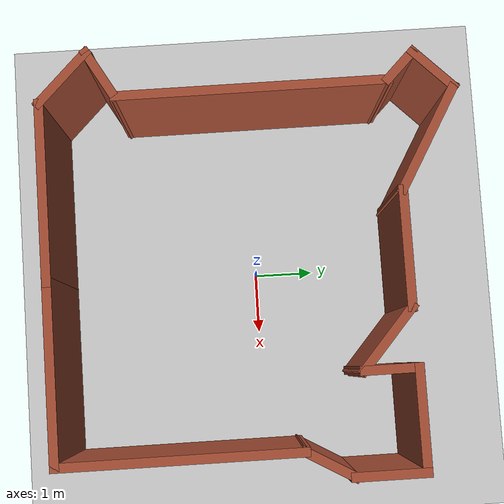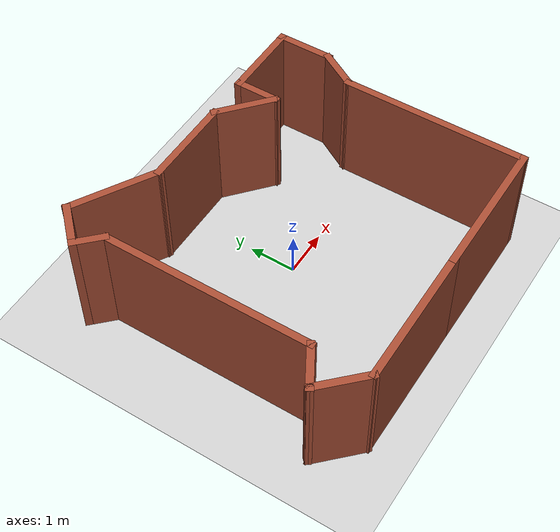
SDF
<sdf version="1.7">
 <world name="default">
  <light name="sun" type="directional">
   <pose>0 0 10 0 -0 0</pose>
   <diffuse>0.8 0.8 0.8 1</diffuse>
   <specular>0.2 0.2 0.2 1</specular>
   <attenuation>
    <range>1000</range>
    <constant>0.9</constant>
    <linear>0.01</linear>
    <quadratic>0.001</quadratic>
   </attenuation>
   <direction>-0.5 0.1 -0.9</direction>
   <spot><inner_angle>0</inner_angle><outer_angle>0</outer_angle><falloff>0</falloff></spot>
  </light>
  <model name="ground_plane">
   <static>1</static>
   <link name="link">
    <collision name="collision">
     <geometry><plane><normal>0 0 1</normal><size>100 100</size></plane></geometry>
     <surface><friction><ode><mu>100</mu><mu2>50</mu2></ode></friction></surface>
    </collision>
    <visual name="visual">
     <cast_shadows>0</cast_shadows>
     <geometry><plane><normal>0 0 1</normal><size>100 100</size></plane></geometry>
     <material>
      <script><uri>file://media/materials/scripts/gazebo.material</uri><name>Gazebo/Grey</name></script>
     </material>
    </visual>
   </link>
  </model>
  <gravity>0 0 -9.8</gravity>
  <magnetic_field>6e-06 2.3e-05 -4.2e-05</magnetic_field>
  <atmosphere type="adiabatic"/>
  <physics type="ode">
   <max_step_size>0.001</max_step_size>
   <real_time_factor>1</real_time_factor>
   <real_time_update_rate>1000</real_time_update_rate>
  </physics>
  <scene><ambient>0.4 0.4 0.4 1</ambient><background>0.7 0.7 0.7 1</background><shadows>1</shadows></scene>
  <spherical_coordinates>
   <surface_model>EARTH_WGS84</surface_model>
   <latitude_deg>0</latitude_deg>
   <longitude_deg>0</longitude_deg>
   <elevation>0</elevation>
   <heading_deg>0</heading_deg>
  </spherical_coordinates>
  <model name="small_room">
   <pose>-0.064408 -0.002962 0 0 -0 0</pose>
   <link name="Wall_10">
    <collision name="Wall_10_Collision">
     <geometry><box><size>3 0.15 2.5</size></box></geometry>
     <pose>0 0 1.25 0 -0 0</pose>
    </collision>
    <visual name="Wall_10_Visual">
     <pose>0 0 1.25 0 -0 0</pose>
     <geometry><box><size>3 0.15 2.5</size></box></geometry>
     <material>
      <script><uri>file://media/materials/scripts/gazebo.material</uri><name>Gazebo/Bricks</name></script>
      <ambient>1 1 1 1</ambient>
     </material>
     <meta><layer>0</layer></meta>
    </visual>
    <pose>-1.24678 -3.28906 0 0 -0 3.14159</pose>
   </link>
   <link name="Wall_11">
    <collision name="Wall_11_Collision">
     <geometry><box><size>1.25 0.15 2.5</size></box></geometry>
     <pose>0 0 1.25 0 -0 0</pose>
    </collision>
    <visual name="Wall_11_Visual">
     <pose>0 0 1.25 0 -0 0</pose>
     <geometry><box><size>1.25 0.15 2.5</size></box></geometry>
     <material>
      <script><uri>file://media/materials/scripts/gazebo.material</uri><name>Gazebo/Bricks</name></script>
      <ambient>1 1 1 1</ambient>
     </material>
     <meta><layer>0</layer></meta>
    </visual>
    <pose>-3.06069 -2.90015 0 0 -0 2.35619</pose>
   </link>
   <link name="Wall_12">
    <collision name="Wall_12_Collision">
     <geometry><box><size>1 0.15 2.5</size></box></geometry>
     <pose>0 0 1.25 0 -0 0</pose>
    </collision>
    <visual name="Wall_12_Visual">
     <pose>0 0 1.25 0 -0 0</pose>
     <geometry><box><size>1 0.15 2.5</size></box></geometry>
     <material>
      <script><uri>file://media/materials/scripts/gazebo.material</uri><name>Gazebo/Bricks</name></script>
      <ambient>1 1 1 1</ambient>
     </material>
     <meta><layer>0</layer></meta>
    </visual>
    <pose>-3.08154 -2.29874 0 0 -0 0.523599</pose>
   </link>
   <link name="Wall_13">
    <collision name="Wall_13_Collision">
     <geometry><box><size>4.5 0.15 2.5</size></box></geometry>
     <pose>0 0 1.25 0 -0 0</pose>
    </collision>
    <visual name="Wall_13_Visual">
     <pose>0 0 1.25 0 -0 0</pose>
     <geometry><box><size>4.5 0.15 2.5</size></box></geometry>
     <material>
      <script><uri>file://media/materials/scripts/gazebo.material</uri><name>Gazebo/Bricks</name></script>
      <ambient>1 1 1 1</ambient>
     </material>
     <meta><layer>0</layer></meta>
    </visual>
    <pose>-2.71348 0.088756 0 0 -0 1.5708</pose>
   </link>
   <link name="Wall_14">
    <collision name="Wall_14_Collision">
     <geometry><box><size>0.75 0.15 2.5</size></box></geometry>
     <pose>0 0 1.25 0 -0 0</pose>
    </collision>
    <visual name="Wall_14_Visual">
     <pose>0 0 1.25 0 -0 0</pose>
     <geometry><box><size>0.75 0.15 2.5</size></box></geometry>
     <material>
      <script><uri>file://media/materials/scripts/gazebo.material</uri><name>Gazebo/Bricks</name></script>
      <ambient>1 1 1 1</ambient>
     </material>
     <meta><layer>0</layer></meta>
    </visual>
    <pose>-2.92561 2.47589 0 0 -0 2.35619</pose>
   </link>
   <link name="Wall_15">
    <collision name="Wall_15_Collision">
     <geometry><box><size>1 0.15 2.5</size></box></geometry>
     <pose>0 0 1.25 0 -0 0</pose>
    </collision>
    <visual name="Wall_15_Visual">
     <pose>0 0 1.25 0 -0 0</pose>
     <geometry><box><size>1 0.15 2.5</size></box></geometry>
     <material>
      <script><uri>file://media/materials/scripts/gazebo.material</uri><name>Gazebo/Bricks</name></script>
      <ambient>1 1 1 1</ambient>
     </material>
     <meta><layer>0</layer></meta>
    </visual>
    <pose>-2.83722 2.98854 0 0 -0 0.785398</pose>
   </link>
   <link name="Wall_16">
    <collision name="Wall_16_Collision">
     <geometry><box><size>2 0.15 2.5</size></box></geometry>
     <pose>0 0 1.25 0 -0 0</pose>
    </collision>
    <visual name="Wall_16_Visual">
     <pose>0 0 1.25 0 -0 0</pose>
     <geometry><box><size>2 0.15 2.5</size></box></geometry>
     <material>
      <script><uri>file://media/materials/scripts/gazebo.material</uri><name>Gazebo/Bricks</name></script>
      <ambient>1 1 1 1</ambient>
     </material>
     <meta><layer>0</layer></meta>
    </visual>
    <pose>-1.73563 2.82656 0 0 -0 -0.523599</pose>
   </link>
   <link name="Wall_17">
    <collision name="Wall_17_Collision">
     <geometry><box><size>2 0.15 2.5</size></box></geometry>
     <pose>0 0 1.25 0 -0 0</pose>
    </collision>
    <visual name="Wall_17_Visual">
     <pose>0 0 1.25 0 -0 0</pose>
     <geometry><box><size>2 0.15 2.5</size></box></geometry>
     <material>
      <script><uri>file://media/materials/scripts/gazebo.material</uri><name>Gazebo/Bricks</name></script>
      <ambient>1 1 1 1</ambient>
     </material>
     <meta><layer>0</layer></meta>
    </visual>
    <pose>-0.009556 2.36406 0 0 -0 0</pose>
   </link>
   <link name="Wall_18">
    <collision name="Wall_18_Collision">
     <geometry><box><size>1.39375 0.15 2.5</size></box></geometry>
     <pose>0 0 1.25 0 -0 0</pose>
    </collision>
    <visual name="Wall_18_Visual">
     <pose>0 0 1.25 0 -0 0</pose>
     <geometry><box><size>1.39375 0.15 2.5</size></box></geometry>
     <material>
      <script><uri>file://media/materials/scripts/gazebo.material</uri><name>Gazebo/Bricks</name></script>
      <ambient>1 1 1 1</ambient>
     </material>
     <meta><layer>0</layer></meta>
    </visual>
    <pose>1.38433 1.95556 0 0 -0 -0.716682</pose>
   </link>
   <link name="Wall_3">
    <collision name="Wall_3_Collision">
     <geometry><box><size>3 0.15 2.5</size></box></geometry>
     <pose>0 0 1.25 0 -0 0</pose>
    </collision>
    <visual name="Wall_3_Visual">
     <pose>0 0 1.25 0 -0 0</pose>
     <geometry><box><size>3 0.15 2.5</size></box></geometry>
     <material>
      <script><uri>file://media/materials/scripts/gazebo.material</uri><name>Gazebo/Bricks</name></script>
      <ambient>1 1 1 1</ambient>
     </material>
     <meta><layer>0</layer></meta>
    </visual>
    <pose>1.60322 -3.28906 0 0 -0 0</pose>
   </link>
   <link name="Wall_4">
    <collision name="Wall_4_Collision">
     <geometry><box><size>4 0.15 2.5</size></box></geometry>
     <pose>0 0 1.25 0 -0 0</pose>
    </collision>
    <visual name="Wall_4_Visual">
     <pose>0 0 1.25 0 -0 0</pose>
     <geometry><box><size>4 0.15 2.5</size></box></geometry>
     <material>
      <script><uri>file://media/materials/scripts/gazebo.material</uri><name>Gazebo/Bricks</name></script>
      <ambient>1 1 1 1</ambient>
     </material>
     <meta><layer>0</layer></meta>
    </visual>
    <pose>3.02822 -1.36406 0 0 -0 1.5708</pose>
   </link>
   <link name="Wall_5">
    <collision name="Wall_5_Collision">
     <geometry><box><size>1 0.15 2.5</size></box></geometry>
     <pose>0 0 1.25 0 -0 0</pose>
    </collision>
    <visual name="Wall_5_Visual">
     <pose>0 0 1.25 0 -0 0</pose>
     <geometry><box><size>1 0.15 2.5</size></box></geometry>
     <material>
      <script><uri>file://media/materials/scripts/gazebo.material</uri><name>Gazebo/Bricks</name></script>
      <ambient>1 1 1 1</ambient>
     </material>
     <meta><layer>0</layer></meta>
    </visual>
    <pose>3.24072 0.929 0 0 -0 1.0472</pose>
   </link>
   <link name="Wall_6">
    <collision name="Wall_6_Collision">
     <geometry><box><size>1.25 0.15 2.5</size></box></geometry>
     <pose>0 0 1.25 0 -0 0</pose>
    </collision>
    <visual name="Wall_6_Visual">
     <pose>0 0 1.25 0 -0 0</pose>
     <geometry><box><size>1.25 0.15 2.5</size></box></geometry>
     <material>
      <script><uri>file://media/materials/scripts/gazebo.material</uri><name>Gazebo/Bricks</name></script>
      <ambient>1 1 1 1</ambient>
     </material>
     <meta><layer>0</layer></meta>
    </visual>
    <pose>3.45322 1.84706 0 0 -0 1.5708</pose>
   </link>
   <link name="Wall_7">
    <collision name="Wall_7_Collision">
     <geometry><box><size>1.75 0.15 2.5</size></box></geometry>
     <pose>0 0 1.25 0 -0 0</pose>
    </collision>
    <visual name="Wall_7_Visual">
     <pose>0 0 1.25 0 -0 0</pose>
     <geometry><box><size>1.75 0.15 2.5</size></box></geometry>
     <material>
      <script><uri>file://media/materials/scripts/gazebo.material</uri><name>Gazebo/Bricks</name></script>
      <ambient>1 1 1 1</ambient>
     </material>
     <meta><layer>0</layer></meta>
    </visual>
    <pose>2.65322 2.39706 0 0 -0 3.14159</pose>
   </link>
   <link name="Wall_8">
    <collision name="Wall_8_Collision">
     <geometry><box><size>1 0.15 2.5</size></box></geometry>
     <pose>0 0 1.25 0 -0 0</pose>
    </collision>
    <visual name="Wall_8_Visual">
     <pose>0 0 1.25 0 -0 0</pose>
     <geometry><box><size>1 0.15 2.5</size></box></geometry>
     <material>
      <script><uri>file://media/materials/scripts/gazebo.material</uri><name>Gazebo/Bricks</name></script>
      <ambient>1 1 1 1</ambient>
     </material>
     <meta><layer>0</layer></meta>
    </visual>
    <pose>1.85322 1.97206 0 0 -0 -1.5708</pose>
   </link>
   <static>1</static>
  </model>
 </world>
</sdf>
